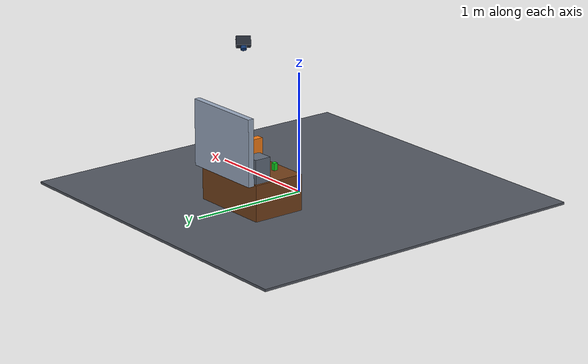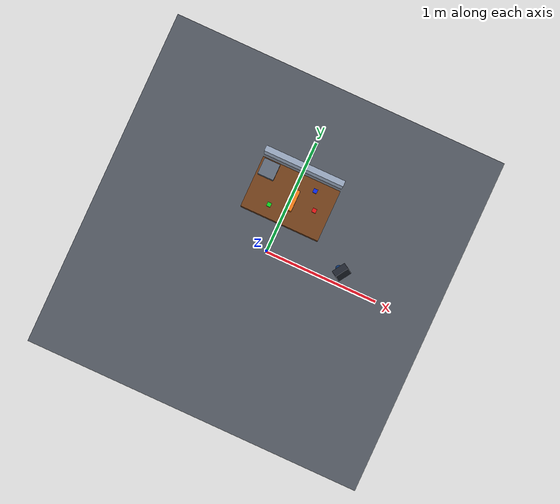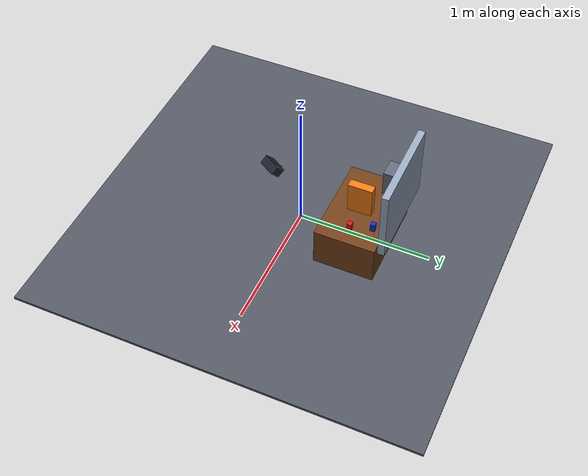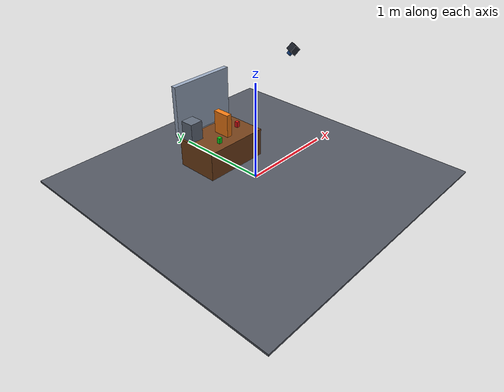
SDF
<?xml version="1.0"?>
<sdf version="1.10">
  <!-- ros_gz_sim's set_entity_pose helper targets /world/default/set_pose. -->
  <world name="default">
    <physics name="bullet_featherstone_1ms" type="bullet">
      <max_step_size>0.001</max_step_size>
      <real_time_factor>1.0</real_time_factor>
      <real_time_update_rate>1000</real_time_update_rate>
    </physics>

    <plugin filename="gz-sim-physics-system" name="gz::sim::systems::Physics">
      <engine>
        <filename>gz-physics-bullet-featherstone-plugin</filename>
      </engine>
    </plugin>
    <plugin filename="gz-sim-user-commands-system" name="gz::sim::systems::UserCommands"/>
    <plugin filename="gz-sim-scene-broadcaster-system" name="gz::sim::systems::SceneBroadcaster"/>
    <!-- Sensors 系统负责更新 RGB-D 相机。使用 Ogre2 渲染彩色图和深度图。 -->
    <plugin filename="gz-sim-sensors-system" name="gz::sim::systems::Sensors">
      <render_engine>ogre2</render_engine>
    </plugin>

    <scene>
      <ambient>0.45 0.45 0.45 1</ambient>
      <background>0.72 0.78 0.86 1</background>
      <shadows>true</shadows>
    </scene>

    <light name="sun" type="directional">
      <cast_shadows>true</cast_shadows>
      <pose>0 0 8 0 0 0</pose>
      <diffuse>0.9 0.9 0.9 1</diffuse>
      <specular>0.2 0.2 0.2 1</specular>
      <direction>-0.4 0.3 -1.0</direction>
    </light>

    <model name="ground_plane">
      <static>true</static>
      <link name="link">
        <collision name="collision">
          <geometry><box><size>3 3 0.02</size></box></geometry>
        </collision>
        <visual name="visual">
          <geometry><box><size>3 3 0.02</size></box></geometry>
          <material><diffuse>0.32 0.34 0.38 1</diffuse></material>
        </visual>
      </link>
      <pose>0 0 -0.01 0 0 0</pose>
    </model>

    <model name="workspace_table">
      <static>true</static>
      <pose>0 0.48 0.15 0 0 0</pose>
      <link name="link">
        <collision name="collision"><geometry><box><size>0.70 0.45 0.30</size></box></geometry></collision>
        <visual name="visual">
          <geometry><box><size>0.70 0.45 0.30</size></box></geometry>
          <material><diffuse>0.45 0.25 0.10 1</diffuse></material>
        </visual>
      </link>
    </model>

    <model name="workspace_back_wall">
      <static>true</static>
      <pose>0 0.75 0.575 0 0 0</pose>
      <link name="link">
        <collision name="collision"><geometry><box><size>0.70 0.05 0.55</size></box></geometry></collision>
        <visual name="visual">
          <geometry><box><size>0.70 0.05 0.55</size></box></geometry>
          <material><diffuse>0.60 0.66 0.75 1</diffuse></material>
        </visual>
      </link>
    </model>

    <model name="workspace_storage_box">
      <static>true</static>
      <pose>-0.26 0.62 0.40 0 0 0</pose>
      <link name="link">
        <collision name="collision"><geometry><box><size>0.14 0.14 0.20</size></box></geometry></collision>
        <visual name="visual">
          <geometry><box><size>0.14 0.14 0.20</size></box></geometry>
          <!-- 使用中性灰，避免与视觉演示中的蓝色方块混淆。 -->
          <material><diffuse>0.38 0.42 0.48 1</diffuse></material>
        </visual>
      </link>
    </model>

    <model name="workspace_center_divider">
      <static>true</static>
      <pose>0.02 0.47 0.42 0 0 0</pose>
      <link name="link">
        <collision name="collision"><geometry><box><size>0.06 0.18 0.24</size></box></geometry></collision>
        <visual name="visual">
          <geometry><box><size>0.06 0.18 0.24</size></box></geometry>
          <material><diffuse>0.95 0.48 0.08 1</diffuse></material>
        </visual>
      </link>
    </model>

    <model name="workspace_rgbd_camera">
      <static>true</static>
      <pose>0.60 0.10 1.10 0 0.844 2.577</pose>
      <link name="camera_link">
        <visual name="camera_body">
          <pose>-0.04 0 0 0 0 0</pose>
          <geometry><box><size>0.08 0.12 0.06</size></box></geometry>
          <material><diffuse>0.12 0.14 0.18 1</diffuse></material>
        </visual>
        <visual name="camera_lens">
          <pose>0.015 0 0 0 1.57079632679 0</pose>
          <geometry><cylinder><radius>0.025</radius><length>0.03</length></cylinder></geometry>
          <material><diffuse>0.05 0.20 0.42 1</diffuse></material>
        </visual>
        <sensor name="workspace_camera" type="rgbd_camera">
          <pose>0 0 0 0 0 0</pose>
          <always_on>true</always_on>
          <update_rate>15</update_rate>
          <visualize>true</visualize>
          <topic>workspace_camera</topic>
          <camera>
            <horizontal_fov>1.0471975512</horizontal_fov>
            <image>
              <width>640</width>
              <height>480</height>
              <format>R8G8B8</format>
            </image>
            <clip>
              <near>0.10</near>
              <far>3.0</far>
            </clip>
            <camera_info_topic>workspace_camera/camera_info</camera_info_topic>
            <optical_frame_id>camera_color_optical_frame</optical_frame_id>
          </camera>
        </sensor>
      </link>
    </model>

    <model name="workspace_target">
      <pose>0.22 0.47 0.331 0 0 0</pose>
      <allow_auto_disable>false</allow_auto_disable>
      <link name="link">
        <inertial>
          <mass>0.08</mass>
          <inertia>
            <ixx>0.0000321667</ixx><iyy>0.0000321667</iyy><izz>0.0000163333</izz>
            <ixy>0</ixy><ixz>0</ixz><iyz>0</iyz>
          </inertia>
        </inertial>
        <collision name="collision">
          <geometry><box><size>0.035 0.035 0.060</size></box></geometry>
          <surface>
            <friction><ode><mu>1.0</mu><mu2>1.0</mu2></ode></friction>
            <bounce><restitution_coefficient>0.0</restitution_coefficient></bounce>
          </surface>
        </collision>
        <visual name="visual">
          <geometry><box><size>0.035 0.035 0.060</size></box></geometry>
          <material><diffuse>0.88 0.08 0.08 1</diffuse></material>
        </visual>
      </link>
    </model>
    <!-- 另外两个动态彩色方块，与红色 workspace_target 共同用于 RGB-D 识别。 -->
    <model name="workspace_green_cube">
      <pose>-0.14 0.36 0.331 0 0 0</pose>
      <allow_auto_disable>false</allow_auto_disable>
      <link name="link">
        <inertial>
          <mass>0.08</mass>
          <inertia>
            <ixx>0.0000321667</ixx><iyy>0.0000321667</iyy><izz>0.0000163333</izz>
            <ixy>0</ixy><ixz>0</ixz><iyz>0</iyz>
          </inertia>
        </inertial>
        <collision name="collision">
          <geometry><box><size>0.035 0.035 0.060</size></box></geometry>
          <surface>
            <friction><ode><mu>1.0</mu><mu2>1.0</mu2></ode></friction>
            <bounce><restitution_coefficient>0.0</restitution_coefficient></bounce>
          </surface>
        </collision>
        <visual name="visual">
          <geometry><box><size>0.035 0.035 0.060</size></box></geometry>
          <material><diffuse>0.06 0.82 0.12 1</diffuse></material>
        </visual>
      </link>
    </model>

    <model name="workspace_blue_cube">
      <pose>0.16 0.62 0.331 0 0 0</pose>
      <allow_auto_disable>false</allow_auto_disable>
      <link name="link">
        <inertial>
          <mass>0.08</mass>
          <inertia>
            <ixx>0.0000321667</ixx><iyy>0.0000321667</iyy><izz>0.0000163333</izz>
            <ixy>0</ixy><ixz>0</ixz><iyz>0</iyz>
          </inertia>
        </inertial>
        <collision name="collision">
          <geometry><box><size>0.035 0.035 0.060</size></box></geometry>
          <surface>
            <friction><ode><mu>1.0</mu><mu2>1.0</mu2></ode></friction>
            <bounce><restitution_coefficient>0.0</restitution_coefficient></bounce>
          </surface>
        </collision>
        <visual name="visual">
          <geometry><box><size>0.035 0.035 0.060</size></box></geometry>
          <material><diffuse>0.04 0.16 0.90 1</diffuse></material>
        </visual>
      </link>
    </model>
  </world>
</sdf>
